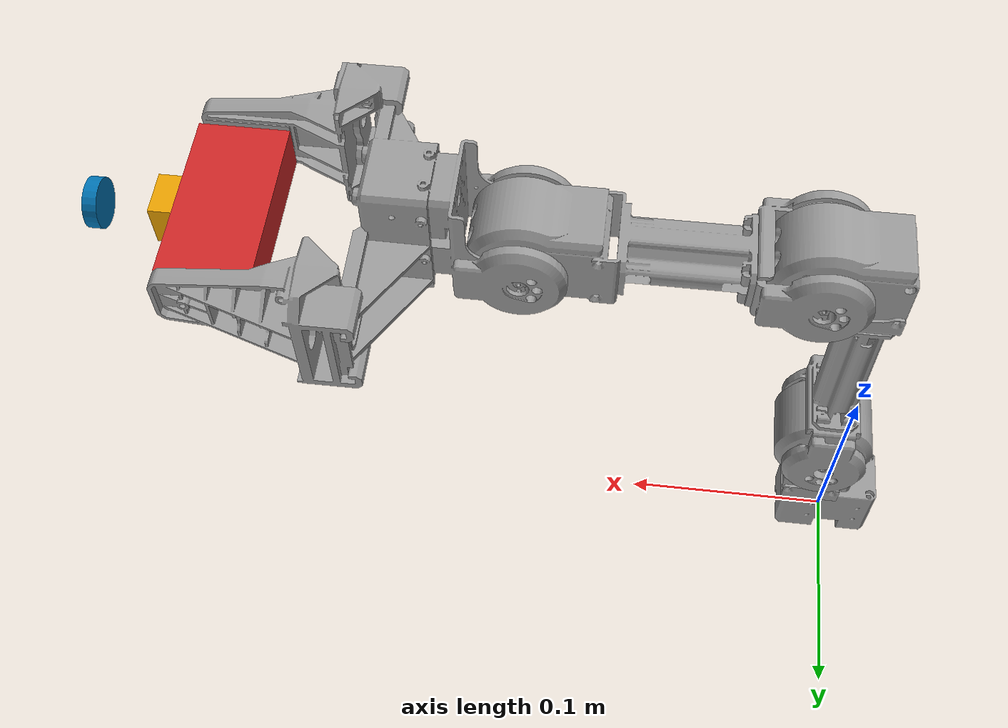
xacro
<?xml version="1.0"?>
<!-- Open_Manipulator Chain -->
<robot xmlns:xacro="http://ros.org/wiki/xacro">

  <!-- Link 1 -->
  <link name="link1">
    <visual>
      <origin xyz="0 0 0" rpy="0 0 0"/>
      <geometry>
        <mesh filename="package://open_manipulator_description/meshes/chain_link1.stl" scale="0.001 0.001 0.001"/>
      </geometry>
      <material name="grey"/>
    </visual>

    <collision>
      <origin xyz="0 0 0" rpy="0 0 0"/>
      <geometry>
        <mesh filename="package://open_manipulator_description/meshes/chain_link1.stl" scale="0.001 0.001 0.001"/>
      </geometry>
    </collision>

    <inertial>
      <origin xyz="3.0876154e-04 0.0000000e+00 -1.2176461e-04" />
      <mass value="7.9119962e-02" />
      <inertia ixx="1.2505234e-05" ixy="0.0" ixz="-1.7855208e-07"
               iyy="2.1898364e-05" iyz="0.0"
               izz="1.9267361e-05" />
    </inertial>
  </link>

  <!-- Joint 1 -->
  <joint name="joint1" type="fixed">
    <parent link="link1"/>
    <child link="link2"/>
    <origin xyz="0.012 0.0 0.017" rpy="0 0 0"/>

  </joint>

  <!--  Link 2 -->
  <link name="link2">
    <visual>
      <origin xyz="0 0 0.019" rpy="0 0 0"/>
      <geometry>
        <mesh filename="package://open_manipulator_description/meshes/chain_link2.stl" scale="0.001 0.001 0.001"/>
      </geometry>
      <material name="grey"/>
    </visual>

    <collision>
      <origin xyz="0 0 0.019" rpy="0 0 0"/>
      <geometry>
        <mesh filename="package://open_manipulator_description/meshes/chain_link2.stl" scale="0.001 0.001 0.001"/>
      </geometry>
    </collision>

    <inertial>
      <origin xyz="-3.0184870e-04 5.4043684e-04 ${0.018 + 2.9433464e-02}" />
      <mass value="9.8406837e-02" />
      <inertia ixx="3.4543422e-05" ixy="-1.6031095e-08" ixz="-3.8375155e-07"
               iyy="3.2689329e-05" iyz="2.8511935e-08"
               izz="1.8850320e-05" />
    </inertial>
  </link>

  <!--  Joint 2 -->
  <joint name="joint2" type="fixed">
    <parent link="link2"/>
    <child link="link3"/>
    <origin xyz="0.0 0.0 0.0595" rpy="0 0 0"/>

  </joint>

  <!--  Link 3 -->
  <link name="link3">
    <visual>
      <origin xyz="0 0 0" rpy="0 0 0"/>
      <geometry>
        <mesh filename="package://open_manipulator_description/meshes/chain_link3.stl" scale="0.001 0.001 0.001"/>
      </geometry>
      <material name="grey"/>
    </visual>

    <collision>
      <origin xyz="0 0 0" rpy="0 0 0"/>
      <geometry>
        <mesh filename="package://open_manipulator_description/meshes/chain_link3.stl" scale="0.001 0.001 0.001"/>
      </geometry>
    </collision>

    <inertial>
      <origin xyz="1.0308393e-02 3.7743363e-04 1.0170197e-01" />
      <mass value="1.3850917e-01" />
      <inertia ixx="3.3055381e-04" ixy="-9.7940978e-08" ixz="-3.8505711e-05"
               iyy="3.4290447e-04" iyz="-1.5717516e-06"
               izz="6.0346498e-05" />
    </inertial>
  </link>

  <!--  Joint 3 -->
  <joint name="joint3" type="fixed">
    <parent link="link3"/>
    <child link="link4"/>
    <origin xyz="0.024 0 0.128" rpy="0 0 0"/>

  </joint>

  <!--  Link 4 -->
  <link name="link4">
    <visual>
      <origin xyz="0 0 0" rpy="0 0 0"/>
      <geometry>
        <mesh filename="package://open_manipulator_description/meshes/chain_link4.stl" scale="0.001 0.001 0.001"/>
      </geometry>
      <material name="grey"/>
    </visual>

    <collision>
      <origin xyz="0 0 0" rpy="0 0 0"/>
      <geometry>
        <mesh filename="package://open_manipulator_description/meshes/chain_link4.stl" scale="0.001 0.001 0.001"/>
      </geometry>
    </collision>

    <inertial>
      <origin xyz="9.0909590e-02 3.8929816e-04 2.2413279e-04" />
      <mass value="1.3274562e-01" />
      <inertia ixx="3.0654178e-05" ixy="-1.2764155e-06" ixz="-2.6874417e-07"
               iyy="2.4230292e-04" iyz="1.1559550e-08"
               izz="2.5155057e-04" />
    </inertial>
  </link>

  <!--  Joint 4 -->
  <joint name="joint4" type="fixed">
    <parent link="link4"/>
    <child link="link5"/>
    <origin xyz="0.124 0.0 0.0" rpy="0 0 0"/>

  </joint>

  <!--  Link 5 -->
  <link name="link5">
    <visual>
      <origin xyz="0 0 0" rpy="0 0 0"/>
      <geometry>
        <mesh filename="package://open_manipulator_description/meshes/chain_link5.stl" scale="0.001 0.001 0.001"/>
      </geometry>
      <material name="grey"/>
    </visual>

    <collision>
      <origin xyz="0 0 0" rpy="0 0 0"/>
      <geometry>
        <mesh filename="package://open_manipulator_description/meshes/chain_link5.stl" scale="0.001 0.001 0.001"/>
      </geometry>
    </collision>

    <inertial>
      <origin xyz="4.4206755e-02 3.6839985e-07 8.9142216e-03" />
      <mass value="1.4327573e-01" />
      <inertia ixx="8.0870749e-05" ixy="0.0" ixz="-1.0157896e-06"
               iyy="7.5980465e-05" iyz="0.0"
               izz="9.3127351e-05" />
    </inertial>
  </link>

  <!--  Gripper joint -->
  <joint name="gripper" type="fixed">
    <parent link="link5"/>
    <child link="gripper_link"/>
    <origin xyz="0.0817 0.044425 0.0" rpy="0 0 0"/>
  </joint>

  <!--  Gripper link -->
  <link name="gripper_link">
    <visual>
      <origin xyz="0.0 0.0 0" rpy="0 0 0"/>
      <geometry>
        <mesh filename="package://open_manipulator_description/meshes/chain_link_grip_l.stl" scale="0.001 0.001 0.001"/>
      </geometry>
      <material name="grey"/>
    </visual>

    <collision>
      <origin xyz="0.0 0.0 0" rpy="0 0 0"/>
      <geometry>
        <mesh filename="package://open_manipulator_description/meshes/chain_link_grip_l.stl" scale="0.001 0.001 0.001"/>
      </geometry>
    </collision>

    <inertial>
      <origin xyz="0 0 0" />
      <mass value="1.0e-03" />
      <inertia ixx="1.0e-03" ixy="0.0" ixz="0.0"
               iyy="1.0e-03" iyz="0.0"
               izz="1.0e-03" />
    </inertial>
  </link>

  <!--  Gripper joint sub -->
  <joint name="gripper_sub" type="fixed">
    <parent link="link5"/>
    <child link="gripper_link_sub"/>
    <origin xyz="0.0817 -0.044425 0" rpy="0 0 0"/>
  </joint>

  <!--  Gripper link sub -->
  <link name="gripper_link_sub">
    <visual>
      <origin xyz="0.0 -0.0 0" rpy="0 0 0"/>
      <geometry>
        <mesh filename="package://open_manipulator_description/meshes/chain_link_grip_r.stl" scale="0.001 0.001 0.001"/>
      </geometry>
      <material name="grey"/>
    </visual>

    <collision>
      <origin xyz="0.0 -0.0 0" rpy="0 0 0"/>
      <geometry>
        <mesh filename="package://open_manipulator_description/meshes/chain_link_grip_r.stl" scale="0.001 0.001 0.001"/>
      </geometry>
    </collision>

    <inertial>
      <origin xyz="0 0 0" />
      <mass value="1.0e-03" />
      <inertia ixx="1.0e-03" ixy="0.0" ixz="0.0"
               iyy="1.0e-03" iyz="0.0"
               izz="1.0e-03" />
    </inertial>
  </link>

   <!-- tactile_probe joint -->
  <joint name="end_effector_joint" type="fixed">
    <origin xyz="0.126 0.0 0.0" rpy="0 0 0"/>
    <parent link="link5"/>
    <child link="end_effector_link"/>
  </joint>

  <!-- tactile_probe -->
  <link name="end_effector_link">
    <visual>
      <origin xyz="0 0 0" rpy="0 0 0"/>
      <geometry>
        <box size="0.04 0.08 0.02" />
      </geometry>
      <material name="red"/>
     </visual>

    <collision>
      <origin xyz="0 0 0" rpy="0 0 0"/>
      <geometry>
        <box size="0.04 0.08 0.02" />
      </geometry>
    </collision>

    <inertial>
      <origin xyz="0 0 0" />
      <mass value="1.0e-03" />
      <inertia ixx="1.0e-03" ixy="0.0" ixz="0.0"
               iyy="1.0e-03" iyz="0.0"
               izz="1.0e-03" />
    </inertial>
  </link>

  <!-- tactile probe color -->
  <gazebo reference="end_effector_link">
    <material>Gazebo/Red</material>
  </gazebo>

  <!-- Tactile Sensor -->
  <link name="base_link">
    <inertial>
      <mass value="1.0e-03"/>
      <origin xyz="0 0 0" rpy="0 1.5708 0"/>
      <inertia ixx="0.00711749" ixy="0" ixz="0" iyy="0.00711749" iyz="0" izz="0.0141333"/>
    </inertial>
    <collision>
      <origin xyz="0 0 0" rpy="0 1.5708 0"/>
      <geometry>
        <box size="0.02 0.02 0.01"/>
      </geometry>
    </collision>
    <visual>
      <origin xyz="0 0 0" rpy="0 1.5708 0"/>
      <geometry>
        <box size="0.02 0.02 0.01"/>
      </geometry>
    </visual>
  </link>

  <joint name="tactile_to_robot" type="fixed">
    <origin xyz="0.025 0.0 0.0" rpy="0 0 0"/>
    <parent link="end_effector_link"/>
    <child link="base_link"/>
  </joint>

  <link name="virtual_link_1">
    <inertial>
      <mass value="1.0e-04"/>
      <origin xyz="0 0 0" rpy="0 0 0"/>
      <inertia ixx="1.256e-05" ixy="0" ixz="0" iyy="1.256e-05" iyz="0" izz="1.256e-05"/>
    </inertial>
    <collision>
      <origin xyz="0 0 0" rpy="0 0 0"/>
      <geometry>
        <sphere radius="0.0004"/>
      </geometry>
    </collision>
    <visual>
      <origin xyz="0 0 0" rpy="0 0 0"/>
      <geometry>
        <sphere radius="0.0004"/>
      </geometry>
    </visual>
  </link>

  <joint name="rev_x_joint" type="fixed">
    <parent link="base_link"/>
    <child link="virtual_link_1"/>
    <origin xyz="0.006 0 0" rpy="0 0 0"/>
    <axis xyz="1 0 0"/>
    <limit lower="-1.5708" upper="1.5708" effort="0.002" velocity="4.8"/>
    <dynamics damping="1.0" friction="0.0"/>
  </joint>

  <gazebo reference="rev_x_joint">
    <implicitSpringDamper>True</implicitSpringDamper>
    <springReference>0</springReference>
    <springStiffness>10</springStiffness>
  </gazebo>

  <link name="virtual_link_2">
    <inertial>
      <mass value="1.0e-04"/>
      <origin xyz="0 0 0" rpy="0 0 0"/>
      <inertia ixx="1.256e-05" ixy="0" ixz="0" iyy="1.256e-05" iyz="0" izz="1.256e-05"/>
    </inertial>
    <collision>
      <origin xyz="0 0 0" rpy="0 0 0"/>
      <geometry>
        <sphere radius="0.0004"/>
      </geometry>
    </collision>
    <visual>
      <origin xyz="0 0 0" rpy="0 0 0"/>
      <geometry>
        <sphere radius="0.0004"/>
      </geometry>
    </visual>
  </link>

  <joint name="rev_y_joint" type="fixed">
    <parent link="virtual_link_1"/>
    <child link="virtual_link_2"/>
    <origin xyz="0 0 0" rpy="0 0 0"/>
    <axis xyz="0 1 0"/>
    <limit lower="-1.5708" upper="1.5708" effort="0.002" velocity="400.8"/>
    <dynamics damping="1.0" friction="0.0"/>
  </joint>

  <gazebo reference="rev_y_joint">
    <implicitSpringDamper>True</implicitSpringDamper>
    <springReference>0</springReference>
    <springStiffness>10</springStiffness>
  </gazebo>

  <link name="virtual_link_3">
    <inertial>
      <mass value="1.0e-04"/>
      <origin xyz="0 0 0" rpy="0 0 0"/>
      <inertia ixx="1.256e-05" ixy="0" ixz="0" iyy="1.256e-05" iyz="0" izz="1.256e-05"/>
    </inertial>
    <collision>
      <origin xyz="0 0 0" rpy="0 0 0"/>
      <geometry>
        <sphere radius="0.0004"/>
      </geometry>
    </collision>
    <visual>
      <origin xyz="0 0 0" rpy="0 0 0"/>
      <geometry>
        <sphere radius="0.0004"/>
      </geometry>
    </visual>
  </link>

  <joint name="rev_z_joint" type="revolute">
    <parent link="virtual_link_2"/>
    <child link="virtual_link_3"/>
    <origin xyz="0 0 0 " rpy="0 0 0"/>
    <axis xyz="0 0 1"/>
    <limit lower="-1.5708" upper="1.5708" effort="1.0" velocity="4.8"/>
    <dynamics damping="1.0" friction="5.0"/>
  </joint>

  <gazebo reference="rev_z_joint">
    <implicitSpringDamper>True</implicitSpringDamper>
    <springReference>0</springReference>
    <springStiffness>10</springStiffness>
  </gazebo>

  <link name="top_link">
    <inertial>
      <mass value="0.0001"/>
      <origin xyz="0 0 0" rpy="0 1.5708 0"/>
      <inertia ixx="0.00662949" ixy="0" ixz="0" iyy="0.00662949" iyz="0" izz="0.0130685"/>
    </inertial>
    <collision>
      <origin xyz="0 0 0" rpy="0 1.5708 0"/>
      <geometry>
        <cylinder radius="0.011" length="0.006"/>
      </geometry>
    </collision>
    <visual>
      <origin xyz="0 0 0" rpy="0 1.5708 0"/>
      <geometry>
        <cylinder radius="0.011" length="0.006"/>
      </geometry>
    </visual>
  </link>

  <joint name="prismatic_joint" type="prismatic">
    <parent link="virtual_link_3"/>
    <child link="top_link"/>
    <origin xyz="0.025 0 0" rpy="0 0 0"/>
    <axis xyz="1 0 0"/>
    <limit lower="-0.03" upper="0.03" effort="0.002" velocity="4.8"/>
    <dynamics damping="1.0" friction="0.0"/>
  </joint>

  <gazebo reference="prismatic_joint">
    <implicitSpringDamper>True</implicitSpringDamper>
    <springReference>0</springReference>
    <springStiffness>10</springStiffness>
  </gazebo>

  <gazebo reference="top_link">
    <gravity>true</gravity>
    <sensor name="imu_sensor" type="imu">
      <always_on>true</always_on>
      <update_rate>120</update_rate>
      <visualize>true</visualize>
      <topic>__default_topic__</topic>
      <plugin filename="libgazebo_ros_imu_sensor.so" name="imu_plugin">
        <topicName>imu</topicName>
        <bodyName>top_link</bodyName>
        <updateRateHZ>10.0</updateRateHZ>
        <gaussianNoise>0.001</gaussianNoise>
        <xyzOffset>0 0 0</xyzOffset>
        <rpyOffset>0 0 0</rpyOffset>
        <frameName>top_link</frameName>
        <initialOrientationAsReference>false</initialOrientationAsReference>
      </plugin>
      <pose>0 0 0 0 0 0</pose>
    </sensor>
  </gazebo>

</robot>
